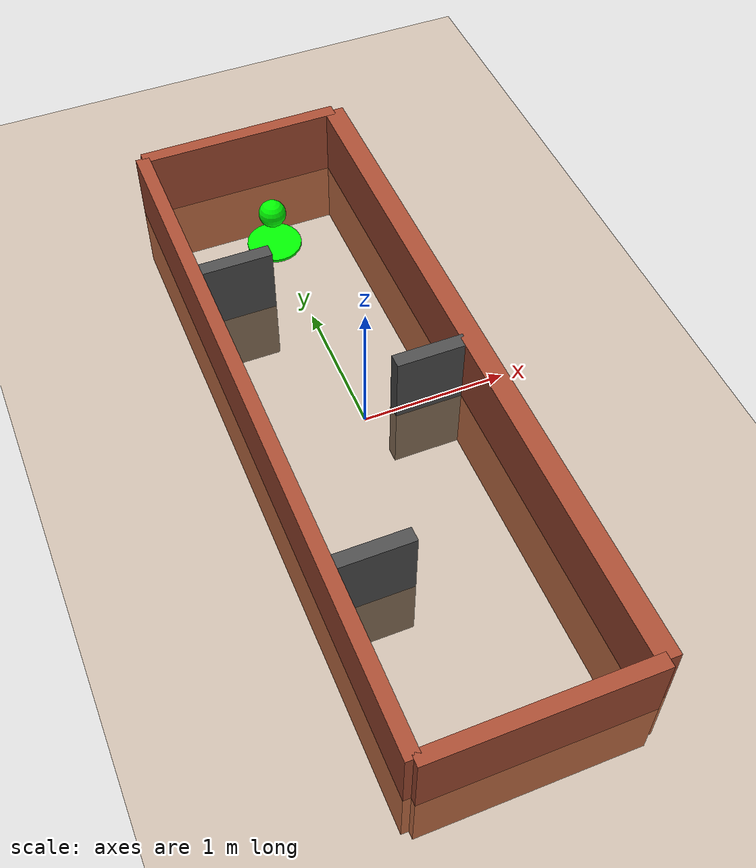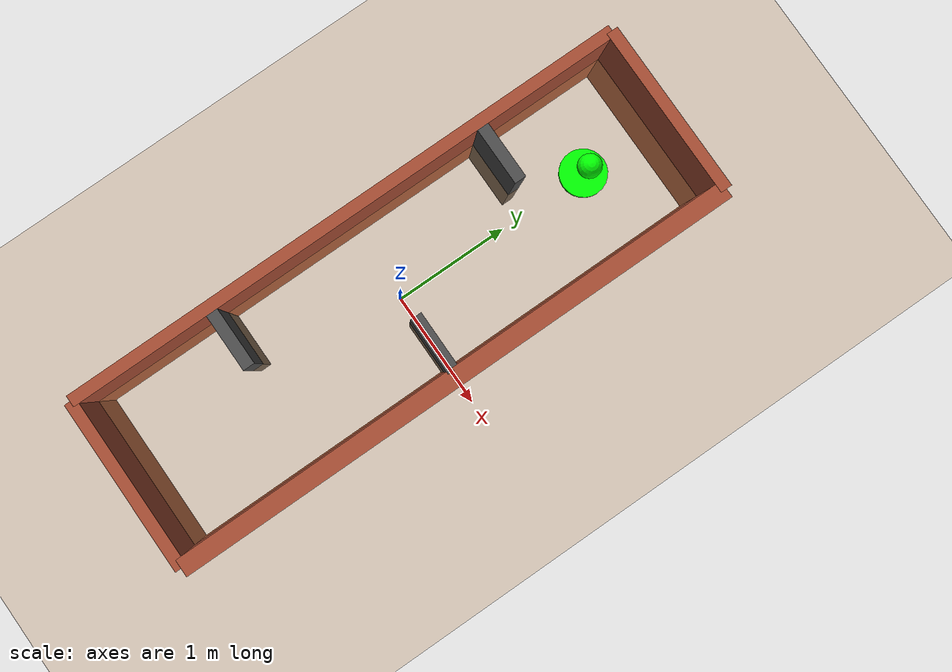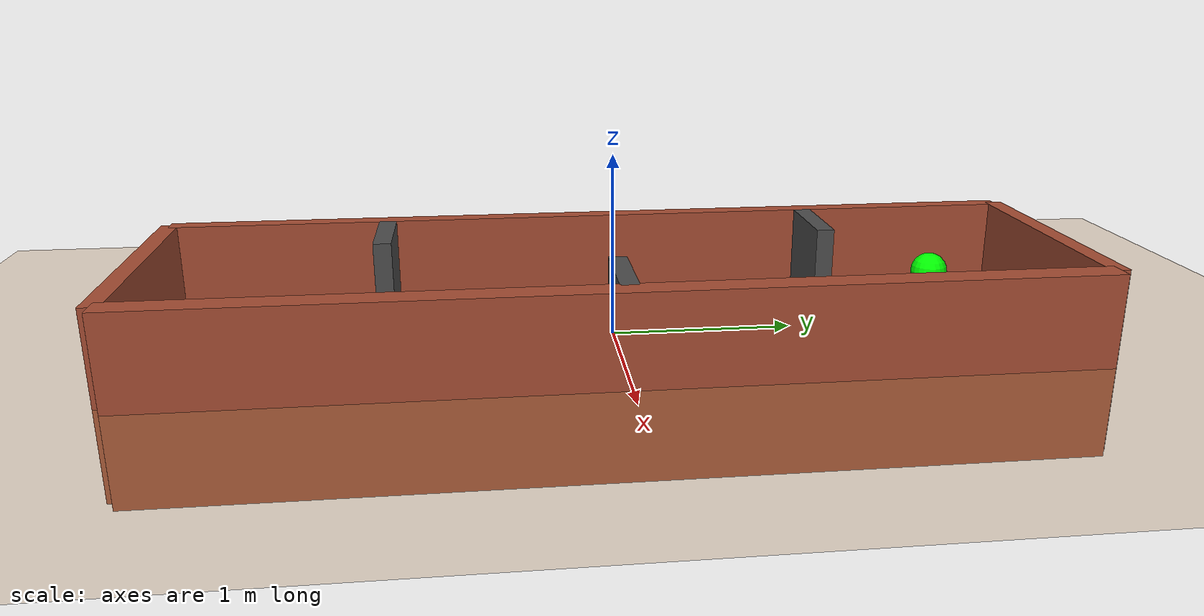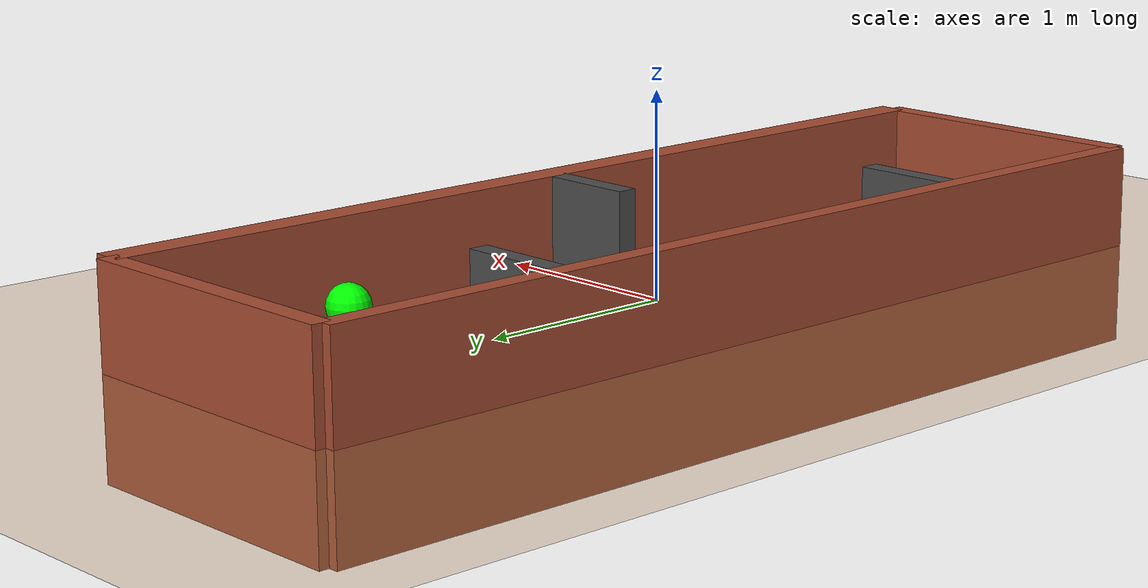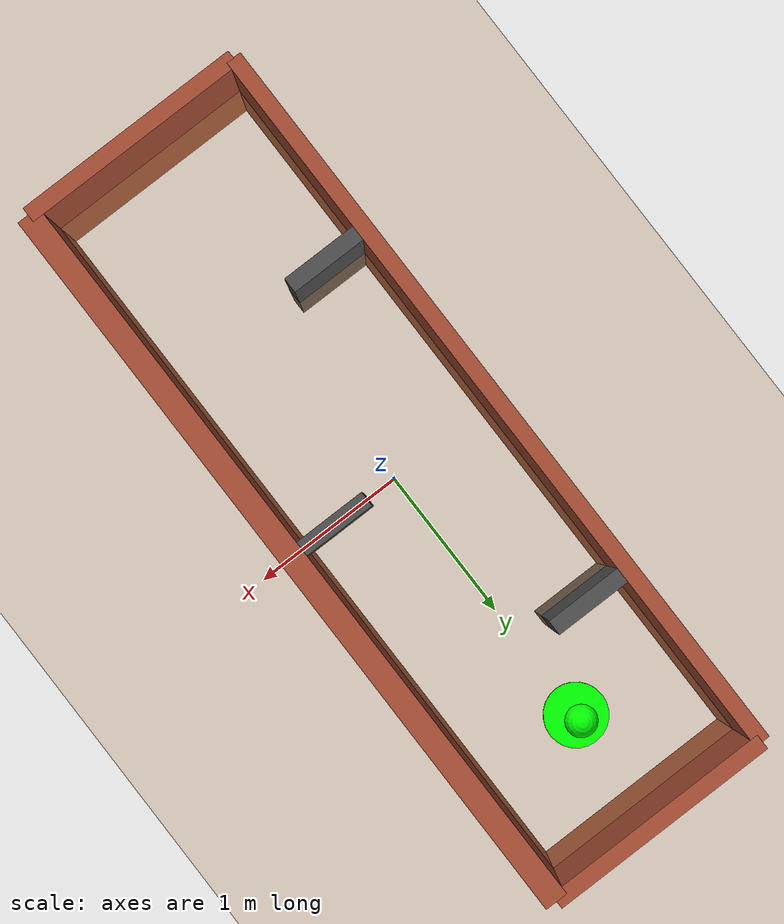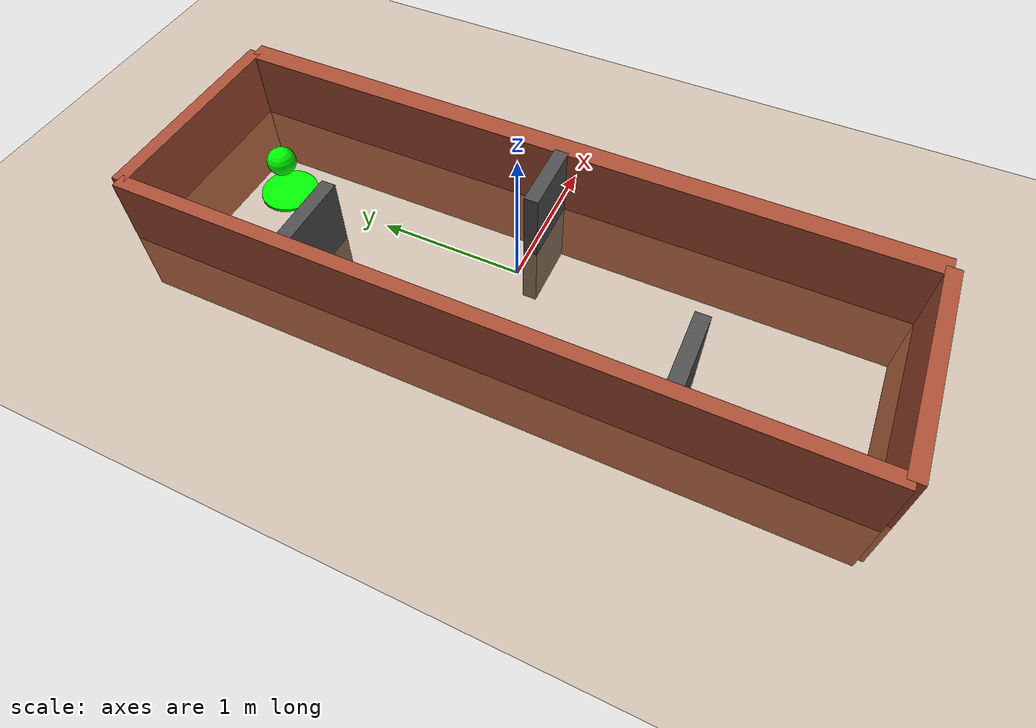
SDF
<?xml version='1.0'?>
<sdf version='1.7'>
  <world name='default'>
    <include><uri>model://sun</uri></include>

    <model name="ground_plane">
      <static>true</static>
      <link name="link">
        <collision name="collision">
          <geometry><plane><normal>0 0 1</normal><size>100 100</size></plane></geometry>
          <surface>
            <friction>
              <ode>
                <mu>0.4</mu>
                <mu2>0.25</mu2>
              </ode>
            </friction>
          </surface>
        </collision>
        <visual name="visual">
          <geometry><plane><normal>0 0 1</normal><size>100 100</size></plane></geometry>
          <material>
            <script>
              <uri>file://media/materials/scripts/gazebo.material</uri>
              <name>Gazebo/Wood</name>
            </script>
          </material>
        </visual>
      </link>
    </model>

    <physics type='ode'>
      <max_step_size>0.001</max_step_size>
      <real_time_factor>1</real_time_factor>
      <real_time_update_rate>1000</real_time_update_rate>
    </physics>

    <plugin name="gazebo_ros_state" filename="libgazebo_ros_state.so">
      <ros><namespace>/</namespace></ros>
    </plugin>

    <model name='maze_backup'>
      <static>1</static>
      <pose>0 0 0 0 0 0</pose>

      <link name='Wall_North'>
        <pose>0 2.5 0 0 0 0</pose>
        <collision name='Collision'><geometry><box><size>1.5 0.10 1</size></box></geometry></collision>
        <visual name='Visual'><geometry><box><size>1.5 0.10 1</size></box></geometry>
          <material><script><uri>file://media/materials/scripts/gazebo.material</uri><name>Gazebo/Bricks</name></script></material>
        </visual>
      </link>

      <link name='Wall_South'>
        <pose>0 -2.5 0 0 0 0</pose>
        <collision name='Collision'><geometry><box><size>1.5 0.10 1</size></box></geometry></collision>
        <visual name='Visual'><geometry><box><size>1.5 0.10 1</size></box></geometry>
          <material><script><uri>file://media/materials/scripts/gazebo.material</uri><name>Gazebo/Bricks</name></script></material>
        </visual>
      </link>

      <link name='Wall_East'>
        <pose>0.75 0 0 0 0 -1.5708</pose>
        <collision name='Collision'><geometry><box><size>5 0.15 1</size></box></geometry></collision>
        <visual name='Visual'><geometry><box><size>5 0.15 1</size></box></geometry>
          <material><script><uri>file://media/materials/scripts/gazebo.material</uri><name>Gazebo/Bricks</name></script></material>
        </visual>
      </link>

      <link name='Wall_West'>
        <pose>-0.75 0 0 0 0 1.5708</pose>
        <collision name='Collision'><geometry><box><size>5 0.10 1</size></box></geometry></collision>
        <visual name='Visual'><geometry><box><size>5 0.10 1</size></box></geometry>
          <material><script><uri>file://media/materials/scripts/gazebo.material</uri><name>Gazebo/Bricks</name></script></material>
        </visual>
      </link>

      <link name='Wall_Splitter_1'>
        <pose>-0.45 -1.25 0 0 0 0</pose>
        <collision name='Collision'><geometry><box><size>0.5 0.10 1.0</size></box></geometry></collision>
        <visual name='Visual'><geometry><box><size>0.5 0.10 1.0</size></box></geometry>
          <material><ambient>0.3 0.3 0.3 1</ambient><diffuse>0.3 0.3 0.3 1</diffuse></material>
        </visual>
      </link>

      <link name='Wall_Splitter_2'>
        <pose>0.45 0 0 0 0 0</pose>
        <collision name='Collision'><geometry><box><size>0.5 0.10 1.0</size></box></geometry></collision>
        <visual name='Visual'><geometry><box><size>0.5 0.10 1.0</size></box></geometry>
          <material><ambient>0.3 0.3 0.3 1</ambient><diffuse>0.3 0.3 0.3 1</diffuse></material>
        </visual>
      </link>

      <link name='Wall_Splitter_3'>
        <pose>-0.45 1.25 0 0 0 0</pose>
        <collision name='Collision'><geometry><box><size>0.5 0.10 1.0</size></box></geometry></collision>
        <visual name='Visual'><geometry><box><size>0.5 0.10 1.0</size></box></geometry>
          <material><ambient>0.3 0.3 0.3 1</ambient><diffuse>0.3 0.3 0.3 1</diffuse></material>
        </visual>
      </link>

    </model>

    <model name='target_mark'>
      <static>1</static>
      <pose>0.0 1.8 0.01 0 0 0</pose>
      <link name='link_0'>
        <visual name='visual'>
          <geometry><cylinder><radius>0.2</radius><length>0.02</length></cylinder></geometry>
          <material><ambient>0 1 0 1</ambient><diffuse>0 1 0 1</diffuse></material>
        </visual>
      </link>
    </model>

    <model name='target_beacon'>
      <static>1</static>
      <pose>0.0 1.8 0.3 0 0 0</pose>
      <link name='link_1'>
        <visual name='visual'>
          <geometry><sphere><radius>0.10</radius></sphere></geometry>
          <material>
            <ambient>0 1 0 1</ambient>
            <diffuse>0 1 0 1</diffuse>
            <specular>0.1 0.1 0.1 1</specular>
            <emissive>0 0.5 0 1</emissive>
          </material>
        </visual>
      </link>
    </model>

    <gui fullscreen='0'>
      <camera name='user_camera'>
        <pose>0 0 10 0 1.57 1.57</pose>
        <view_controller>orbit</view_controller>
      </camera>
    </gui>
  </world>
</sdf>
